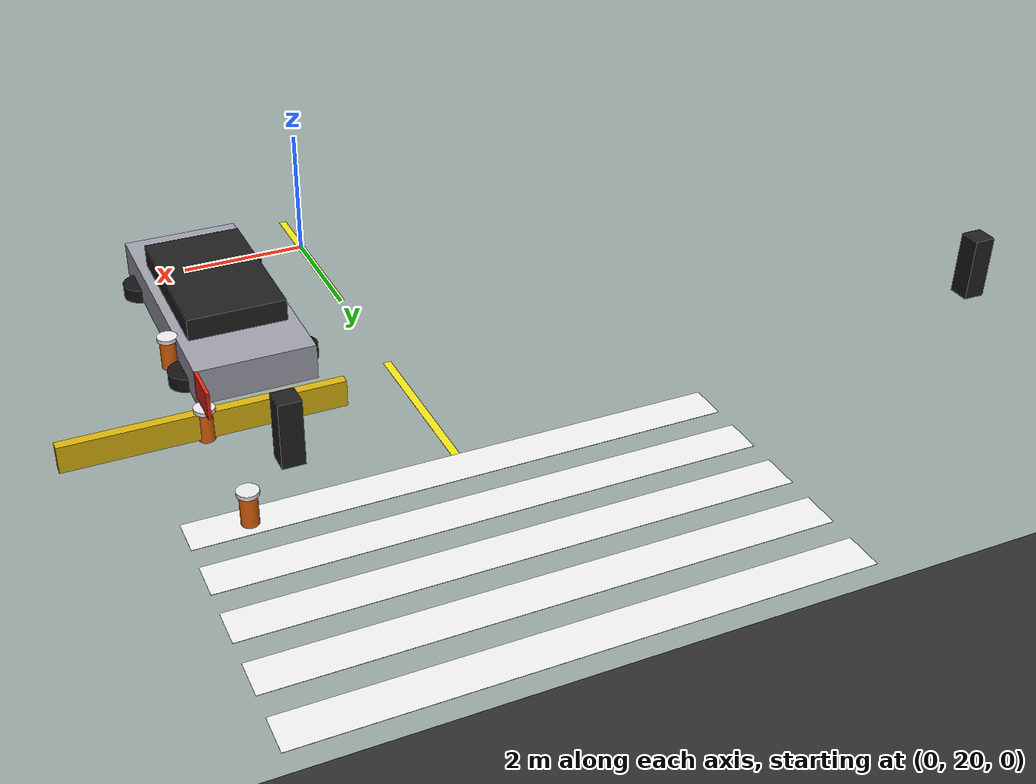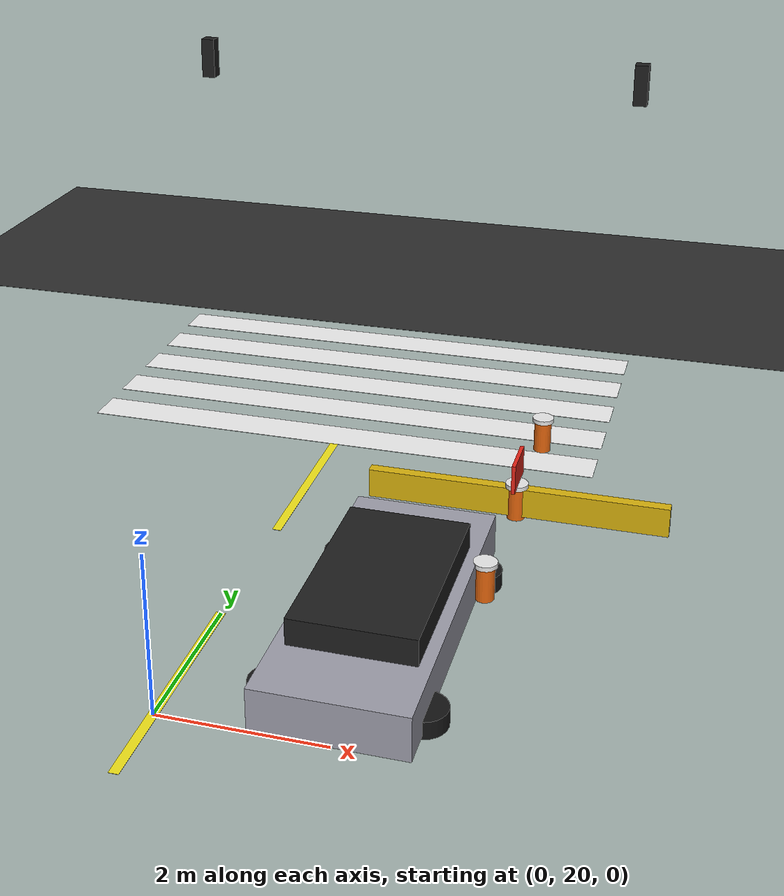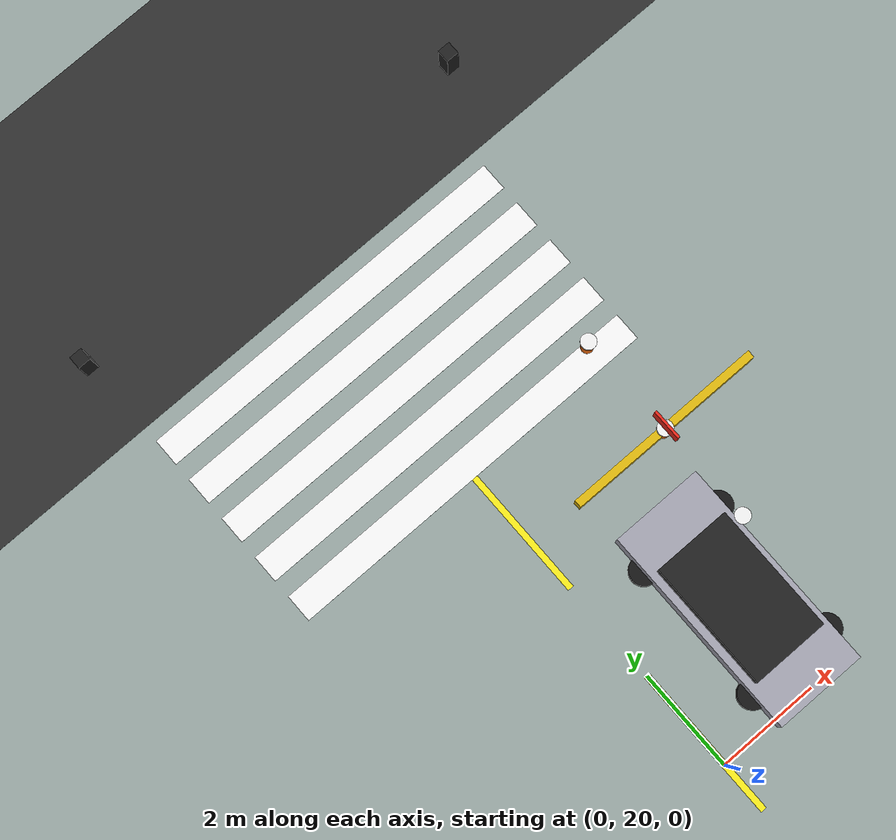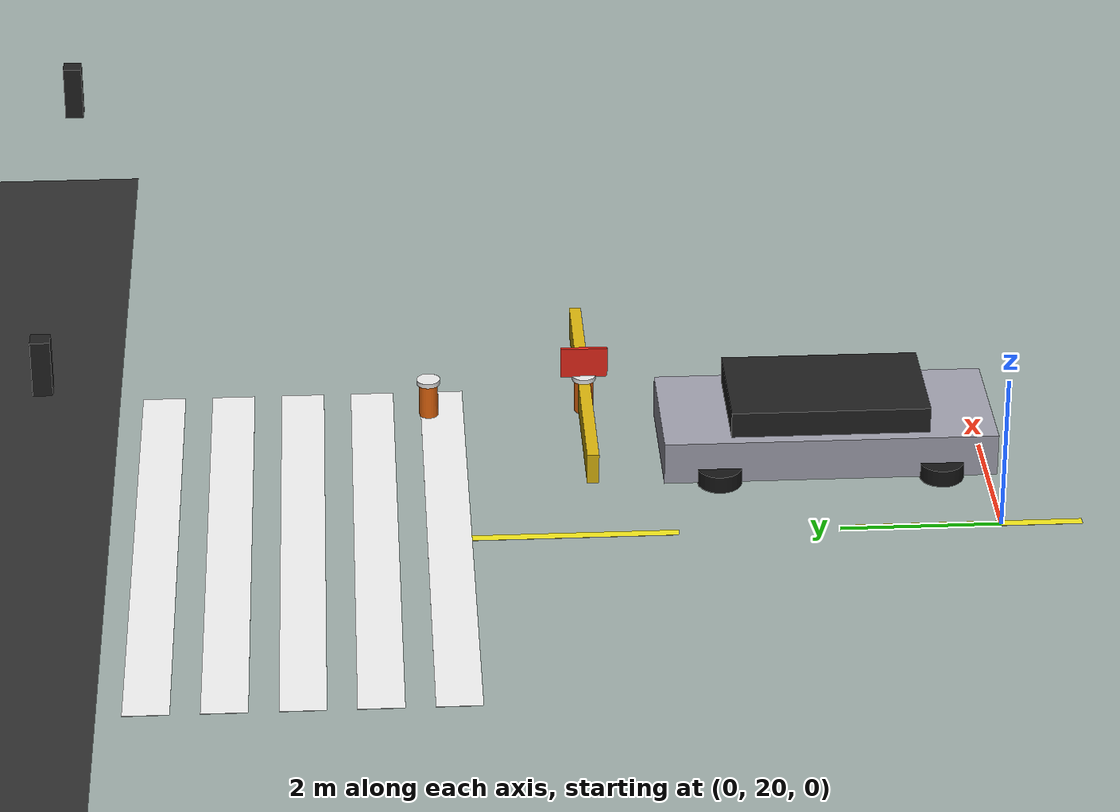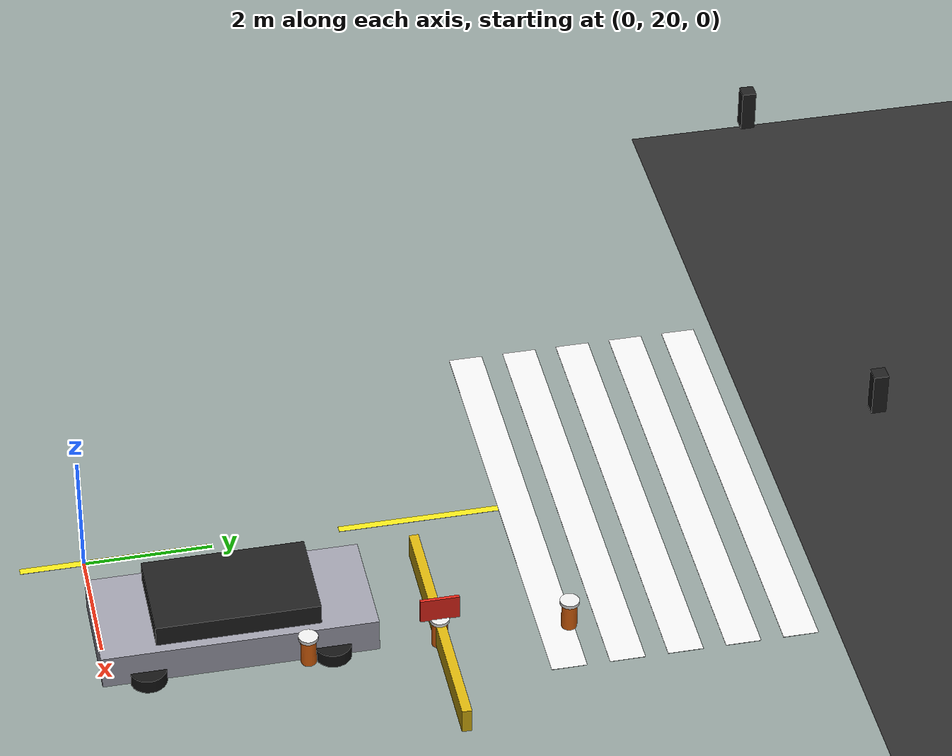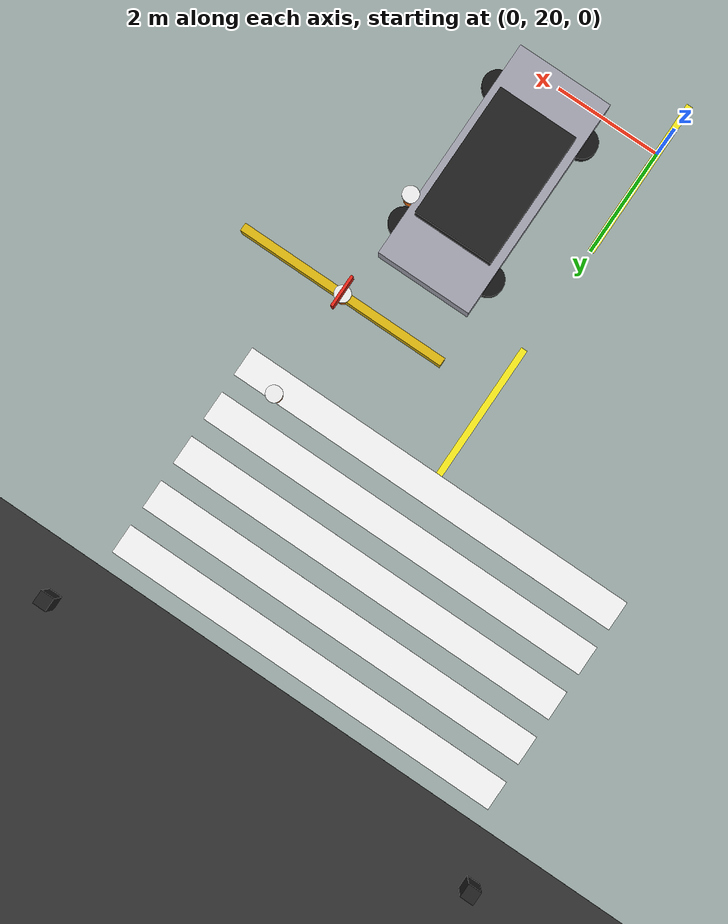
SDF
<sdf version="1.9">
 <world name="city">
  <model name="road_h_7">
   <static>true</static>
   <pose>0 35.0 0.008 0 0 0</pose>
   <link name="l">
    <collision name="c"><geometry><box><size>140.0 8.0 0.005</size></box></geometry></collision>
    <visual name="v">
     <geometry><box><size>140.0 8.0 0.005</size></box></geometry>
     <material>
      <ambient>0.18 0.18 0.18 1</ambient>
      <diffuse>0.18 0.18 0.18 1</diffuse>
      <specular>0.04 0.04 0.04 1</specular>
     </material>
    </visual>
   </link>
  </model>
  <model name="cw_s_192">
   <static>true</static>
   <pose>0.0 30.425 0.013000000000000001 0 0 0</pose>
   <link name="l">
    <visual name="v">
     <geometry><box><size>7.6 0.55 0.005</size></box></geometry>
     <material>
      <ambient>0.94 0.94 0.94 1</ambient>
      <diffuse>0.94 0.94 0.94 1</diffuse>
      <specular>0.04 0.04 0.04 1</specular>
     </material>
    </visual>
   </link>
  </model>
  <model name="cw_s_196">
   <static>true</static>
   <pose>0.0 29.525 0.013000000000000001 0 0 0</pose>
   <link name="l">
    <visual name="v">
     <geometry><box><size>7.6 0.55 0.005</size></box></geometry>
     <material>
      <ambient>0.94 0.94 0.94 1</ambient>
      <diffuse>0.94 0.94 0.94 1</diffuse>
      <specular>0.04 0.04 0.04 1</specular>
     </material>
    </visual>
   </link>
  </model>
  <model name="cw_s_200">
   <static>true</static>
   <pose>0.0 28.625 0.013000000000000001 0 0 0</pose>
   <link name="l">
    <visual name="v">
     <geometry><box><size>7.6 0.55 0.005</size></box></geometry>
     <material>
      <ambient>0.94 0.94 0.94 1</ambient>
      <diffuse>0.94 0.94 0.94 1</diffuse>
      <specular>0.04 0.04 0.04 1</specular>
     </material>
    </visual>
   </link>
  </model>
  <model name="cw_s_204">
   <static>true</static>
   <pose>0.0 27.725 0.013000000000000001 0 0 0</pose>
   <link name="l">
    <visual name="v">
     <geometry><box><size>7.6 0.55 0.005</size></box></geometry>
     <material>
      <ambient>0.94 0.94 0.94 1</ambient>
      <diffuse>0.94 0.94 0.94 1</diffuse>
      <specular>0.04 0.04 0.04 1</specular>
     </material>
    </visual>
   </link>
  </model>
  <model name="cw_s_208">
   <static>true</static>
   <pose>0.0 26.825 0.013000000000000001 0 0 0</pose>
   <link name="l">
    <visual name="v">
     <geometry><box><size>7.6 0.55 0.005</size></box></geometry>
     <material>
      <ambient>0.94 0.94 0.94 1</ambient>
      <diffuse>0.94 0.94 0.94 1</diffuse>
      <specular>0.04 0.04 0.04 1</specular>
     </material>
    </visual>
   </link>
  </model>
  <model name="dash_308">
   <static>true</static>
   <pose>0.0 20.5 0.012 0 0 0</pose>
   <link name="l">
    <visual name="v">
     <geometry><box><size>0.12 3.0 0.003</size></box></geometry>
     <material>
      <ambient>0.95 0.9 0.1 1</ambient>
      <diffuse>0.95 0.9 0.1 1</diffuse>
      <specular>0.04 0.04 0.04 1</specular>
     </material>
    </visual>
   </link>
  </model>
  <model name="dash_309">
   <static>true</static>
   <pose>0.0 25.5 0.012 0 0 0</pose>
   <link name="l">
    <visual name="v">
     <geometry><box><size>0.12 3.0 0.003</size></box></geometry>
     <material>
      <ambient>0.95 0.9 0.1 1</ambient>
      <diffuse>0.95 0.9 0.1 1</diffuse>
      <specular>0.04 0.04 0.04 1</specular>
     </material>
    </visual>
   </link>
  </model>
  <model name="rcar3_b_528">
   <static>true</static>
   <pose>2.0 22 0.358 0 0 0</pose>
   <link name="l">
    <collision name="c"><geometry><box><size>1.8 4.2 0.55</size></box></geometry></collision>
    <visual name="v">
     <geometry><box><size>1.8 4.2 0.55</size></box></geometry>
     <material>
      <ambient>0.62 0.62 0.67 1</ambient>
      <diffuse>0.62 0.62 0.67 1</diffuse>
      <specular>0.04 0.04 0.04 1</specular>
     </material>
    </visual>
   </link>
  </model>
  <model name="rcar3_r_529">
   <static>true</static>
   <pose>2.0 22 0.778 0 0 0</pose>
   <link name="l">
    <collision name="c"><geometry><box><size>1.5 2.5 0.38</size></box></geometry></collision>
    <visual name="v">
     <geometry><box><size>1.5 2.5 0.38</size></box></geometry>
     <material>
      <ambient>0.12 0.12 0.12 1</ambient>
      <diffuse>0.12 0.12 0.12 1</diffuse>
      <specular>0.04 0.04 0.04 1</specular>
     </material>
    </visual>
   </link>
  </model>
  <model name="rcar3_w_530">
   <static>true</static>
   <pose>1.15 20.6 0.158 0 0 1.5708</pose>
   <link name="l">
    <visual name="v">
     <geometry><cylinder><radius>0.28</radius><length>0.22</length></cylinder></geometry>
     <material><ambient>0.08 0.08 0.08 1</ambient><diffuse>0.08 0.08 0.08 1</diffuse></material>
    </visual>
   </link>
  </model>
  <model name="rcar3_w_531">
   <static>true</static>
   <pose>2.85 20.6 0.158 0 0 1.5708</pose>
   <link name="l">
    <visual name="v">
     <geometry><cylinder><radius>0.28</radius><length>0.22</length></cylinder></geometry>
     <material><ambient>0.08 0.08 0.08 1</ambient><diffuse>0.08 0.08 0.08 1</diffuse></material>
    </visual>
   </link>
  </model>
  <model name="rcar3_w_532">
   <static>true</static>
   <pose>1.15 23.4 0.158 0 0 1.5708</pose>
   <link name="l">
    <visual name="v">
     <geometry><cylinder><radius>0.28</radius><length>0.22</length></cylinder></geometry>
     <material><ambient>0.08 0.08 0.08 1</ambient><diffuse>0.08 0.08 0.08 1</diffuse></material>
    </visual>
   </link>
  </model>
  <model name="rcar3_w_533">
   <static>true</static>
   <pose>2.85 23.4 0.158 0 0 1.5708</pose>
   <link name="l">
    <visual name="v">
     <geometry><cylinder><radius>0.28</radius><length>0.22</length></cylinder></geometry>
     <material><ambient>0.08 0.08 0.08 1</ambient><diffuse>0.08 0.08 0.08 1</diffuse></material>
    </visual>
   </link>
  </model>
  <model name="tl_0_35_0_hous_812">
   <static>true</static>
   <pose>-3.6511340769993605 31.34819021732644 4.505 0 0 0</pose>
   <link name="l">
    <collision name="c"><geometry><box><size>0.22 0.22 0.65</size></box></geometry></collision>
    <visual name="v">
     <geometry><box><size>0.22 0.22 0.65</size></box></geometry>
     <material>
      <ambient>0.12 0.12 0.12 1</ambient>
      <diffuse>0.12 0.12 0.12 1</diffuse>
      <specular>0.04 0.04 0.04 1</specular>
     </material>
    </visual>
   </link>
  </model>
  <model name="tl_0_35_0_l0_813">
   <static>true</static>
   <pose>-3.6511340769993605 31.34819021732644 4.705 0 0 0</pose>
   <link name="l">
    <visual name="v">
     <geometry><sphere><radius>0.07</radius></sphere></geometry>
     <material><ambient>0.95 0.08 0.08 1</ambient><diffuse>0.95 0.08 0.08 1</diffuse></material>
    </visual>
   </link>
  </model>
  <model name="tl_0_35_0_l1_814">
   <static>true</static>
   <pose>-3.6511340769993605 31.34819021732644 4.505 0 0 0</pose>
   <link name="l">
    <visual name="v">
     <geometry><sphere><radius>0.07</radius></sphere></geometry>
     <material><ambient>0.9 0.8 0.05 1</ambient><diffuse>0.9 0.8 0.05 1</diffuse></material>
    </visual>
   </link>
  </model>
  <model name="tl_0_35_0_l2_815">
   <static>true</static>
   <pose>-3.6511340769993605 31.34819021732644 4.305 0 0 0</pose>
   <link name="l">
    <visual name="v">
     <geometry><sphere><radius>0.07</radius></sphere></geometry>
     <material><ambient>0.05 0.85 0.15 1</ambient><diffuse>0.05 0.85 0.15 1</diffuse></material>
    </visual>
   </link>
  </model>
  <model name="tl_0_35_1_hous_818">
   <static>true</static>
   <pose>3.6516369090241576 31.348693151775077 4.505 0 0 0</pose>
   <link name="l">
    <collision name="c"><geometry><box><size>0.22 0.22 0.65</size></box></geometry></collision>
    <visual name="v">
     <geometry><box><size>0.22 0.22 0.65</size></box></geometry>
     <material>
      <ambient>0.12 0.12 0.12 1</ambient>
      <diffuse>0.12 0.12 0.12 1</diffuse>
      <specular>0.04 0.04 0.04 1</specular>
     </material>
    </visual>
   </link>
  </model>
  <model name="constr1_cone0_914">
   <static>true</static>
   <pose>3 23.0 0.375 0 0 0</pose>
   <link name="l">
    <collision name="c">
     <geometry><cylinder><radius>0.12</radius><length>0.5</length></cylinder></geometry>
    </collision>
    <visual name="v">
     <geometry><cylinder><radius>0.12</radius><length>0.5</length></cylinder></geometry>
     <material><ambient>0.9 0.4 0.05 1</ambient><diffuse>0.9 0.4 0.05 1</diffuse></material>
    </visual>
   </link>
  </model>
  <model name="constr1_cw0_915">
   <static>true</static>
   <pose>3 23.0 0.605 0 0 0</pose>
   <link name="l">
    <visual name="v">
     <geometry><cylinder><radius>0.15</radius><length>0.06</length></cylinder></geometry>
     <material><ambient>0.92 0.92 0.92 1</ambient><diffuse>0.92 0.92 0.92 1</diffuse></material>
    </visual>
   </link>
  </model>
  <model name="constr1_cone1_916">
   <static>true</static>
   <pose>3 25.0 0.375 0 0 0</pose>
   <link name="l">
    <collision name="c">
     <geometry><cylinder><radius>0.12</radius><length>0.5</length></cylinder></geometry>
    </collision>
    <visual name="v">
     <geometry><cylinder><radius>0.12</radius><length>0.5</length></cylinder></geometry>
     <material><ambient>0.9 0.4 0.05 1</ambient><diffuse>0.9 0.4 0.05 1</diffuse></material>
    </visual>
   </link>
  </model>
  <model name="constr1_cw1_917">
   <static>true</static>
   <pose>3 25.0 0.605 0 0 0</pose>
   <link name="l">
    <visual name="v">
     <geometry><cylinder><radius>0.15</radius><length>0.06</length></cylinder></geometry>
     <material><ambient>0.92 0.92 0.92 1</ambient><diffuse>0.92 0.92 0.92 1</diffuse></material>
    </visual>
   </link>
  </model>
  <model name="constr1_cone2_918">
   <static>true</static>
   <pose>3 27.0 0.375 0 0 0</pose>
   <link name="l">
    <collision name="c">
     <geometry><cylinder><radius>0.12</radius><length>0.5</length></cylinder></geometry>
    </collision>
    <visual name="v">
     <geometry><cylinder><radius>0.12</radius><length>0.5</length></cylinder></geometry>
     <material><ambient>0.9 0.4 0.05 1</ambient><diffuse>0.9 0.4 0.05 1</diffuse></material>
    </visual>
   </link>
  </model>
  <model name="constr1_cw2_919">
   <static>true</static>
   <pose>3 27.0 0.605 0 0 0</pose>
   <link name="l">
    <visual name="v">
     <geometry><cylinder><radius>0.15</radius><length>0.06</length></cylinder></geometry>
     <material><ambient>0.92 0.92 0.92 1</ambient><diffuse>0.92 0.92 0.92 1</diffuse></material>
    </visual>
   </link>
  </model>
  <model name="constr1_bar_920">
   <static>true</static>
   <pose>3 25 0.375 0 0 1.5708</pose>
   <link name="l">
    <collision name="c"><geometry><box><size>0.15 4.0 0.4</size></box></geometry></collision>
    <visual name="v">
     <geometry><box><size>0.15 4.0 0.4</size></box></geometry>
     <material>
      <ambient>0.85 0.7 0.05 1</ambient>
      <diffuse>0.85 0.7 0.05 1</diffuse>
      <specular>0.04 0.04 0.04 1</specular>
     </material>
    </visual>
   </link>
  </model>
  <model name="constr1_sign_921">
   <static>true</static>
   <pose>3 25 0.825 0 0 0</pose>
   <link name="l">
    <visual name="v">
     <geometry><box><size>0.05 0.6 0.4</size></box></geometry>
     <material>
      <ambient>0.9 0.15 0.1 1</ambient>
      <diffuse>0.9 0.15 0.1 1</diffuse>
      <specular>0.04 0.04 0.04 1</specular>
     </material>
    </visual>
   </link>
  </model>
 </world>
</sdf>
